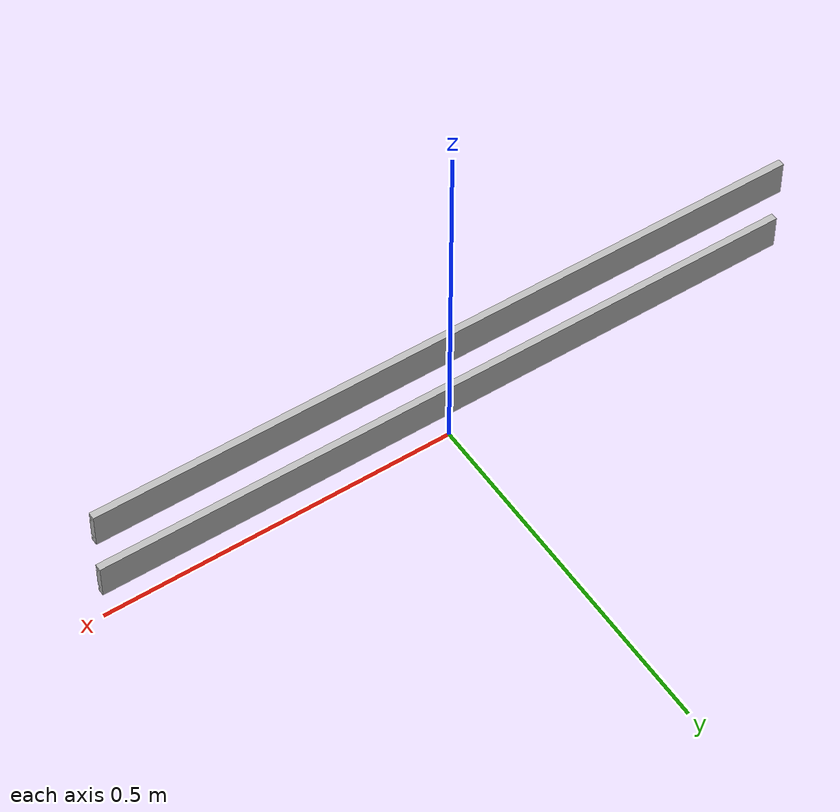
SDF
<sdf version="1.6">
  <model name="ColBumper">
   <static>true</static>
    <link name="body">
      <pose>0 0 0 0 0 0</pose>

      <visual name="visual">
        <geometry>
          <mesh>
            <uri>model://ColBumper/meshes/ColBumper.obj</uri>
          </mesh>
        </geometry>
      </visual>

      <collision name="collision">
        <geometry>
          <mesh>
            <uri>model://ColBumper/meshes/ColBumper_Col.obj</uri>
          </mesh>
        </geometry>
      </collision>

    </link>
  </model>
</sdf>
